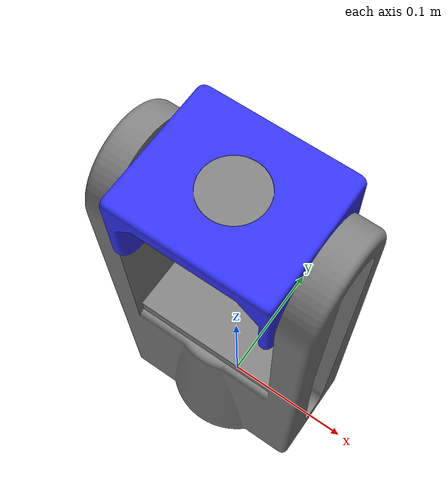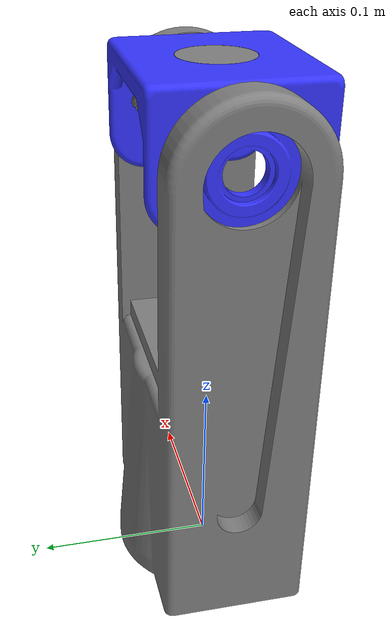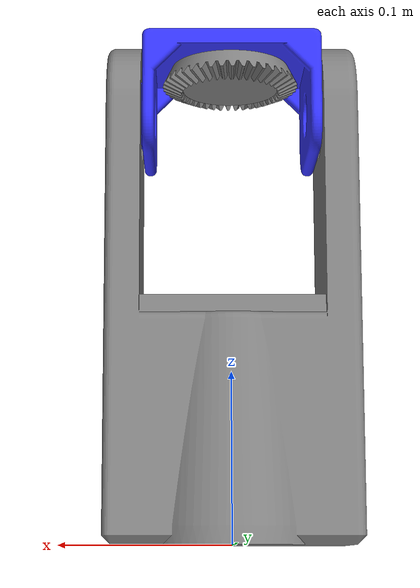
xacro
<?xml version="1.0"?>
<robot xmlns:xacro="http://www.ros.org/wiki/xacro"  name="diff_bot">

    <xacro:arg name="cmd_mode" default="position"/>
    <xacro:arg name="HW_mode" default="mock"/>

    <xacro:include filename="robot_core.xacro"/>
    <xacro:include filename="gazebo.xacro"/>
    <xacro:include filename="ros2_control.xacro"/>

    <!-- XACRO to handle multiple ros2_control hardware_interface plugins -->
    <xacro:ros2_control HW_mode="$(arg HW_mode)" cmd_mode="$(arg cmd_mode)"/>

</robot>

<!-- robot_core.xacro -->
<robot xmlns:xacro="http://www.ros.org/wiki/xacro">

    <material name="black">
        <color rgba="0 0 0 1"/>
    </material>

    <material name="grey">
        <color rgba="0.5 0.5 0.5 1"/>
    </material>

    <material name="blue">
        <color rgba="0.2 0.2 1 1"/>
    </material>

    <xacro:property name="scale_factor" value="0.001 0.001 0.001"/>

    <!-- *************************************** Wrist ******************************************** -->

    <link name="world"/>

    <link name="forearm">
        <visual>
            <origin xyz="0 0 0" rpy="0 0 0"/>
            <geometry>
                <mesh filename="package://diff_bot/meshes/forearm.stl" scale="${scale_factor}"/>
            </geometry>
            <material name="grey"/>
        </visual>
        <collision>
            <origin xyz="0 0 0"/>
            <geometry>
                <mesh filename="package://diff_bot/meshes/forearm.stl" scale="${scale_factor}"/>
            </geometry>
        </collision>
        <inertial>
            <mass value="1.0"/>
            <origin xyz="0 0 0" rpy="0 0 0"/>
            <inertia ixx="0.01" ixy="0" ixz="0" iyy="0.01" iyz="0" izz="0.01"/>
        </inertial>
    </link>

    <joint name="base_joint" type="fixed">
        <parent link="world"/>
        <child link="forearm"/>
        <origin xyz="0 0 0" rpy="0 0 0"/>
    </joint>

    <link name="wrist_carrier">
        <visual>
            <origin xyz="0 0 0"/>
            <geometry>
                <mesh filename="package://diff_bot/meshes/wrist_carrier.stl" scale="${scale_factor}"/>
            </geometry>
            <material name="blue"/>
        </visual>
        <collision>
            <origin xyz="0 0 0"/>
            <geometry>
                <mesh filename="package://diff_bot/meshes/wrist_carrier.stl" scale="${scale_factor}"/>
            </geometry>
        </collision>
        <inertial>
            <mass value="0.5"/>
            <origin xyz="0 0 0" rpy="0 0 0"/>
            <inertia ixx="0.01" ixy="0" ixz="0" iyy="0.01" iyz="0" izz="0.01"/>
        </inertial>
    </link>

    <joint name="wrist_carrier_joint" type="revolute">
        <parent link="forearm"/>
        <child link="wrist_carrier"/>
        <origin xyz="0 0 0.256" rpy="0 0 0"/>
        <axis xyz="1 0 0"/>
        <limit lower="-${3*pi/4}" upper="${3*pi/4}" effort="100" velocity="1"/>
    </joint>

    <link name="wrist_bevel">
        <visual>
            <origin xyz="0 0 0" />
            <geometry>
                <mesh filename="package://diff_bot/meshes/wrist_bevel.stl" scale="${scale_factor}"/>
            </geometry>
            <material name="grey"/>
        </visual>
        <collision>
            <origin xyz="0 0 0"/>
            <geometry>
                <mesh filename="package://diff_bot/meshes/wrist_bevel.stl" scale="${scale_factor}"/>
            </geometry>
        </collision>
        <inertial>
            <mass value="0.5"/>
            <origin xyz="0 0 0" rpy="0 0 0"/>
            <inertia ixx="0.01" ixy="0" ixz="0" iyy="0.01" iyz="0" izz="0.01"/>
        </inertial>
    </link>

    <joint name="wrist_bevel_joint" type="revolute">
        <parent link="wrist_carrier"/>
        <child link="wrist_bevel"/>
        <origin xyz="0 0 0.0399" rpy="0 0 0"/>
        <axis xyz="0 0 1"/>
        <limit lower="-${pi}" upper="${pi}" effort="100" velocity="1"/>
    </joint>

</robot>
